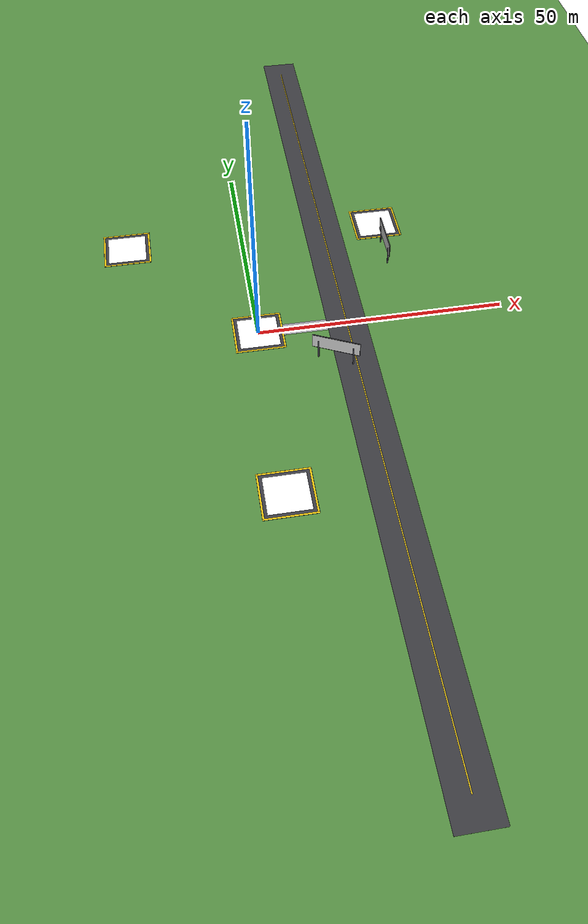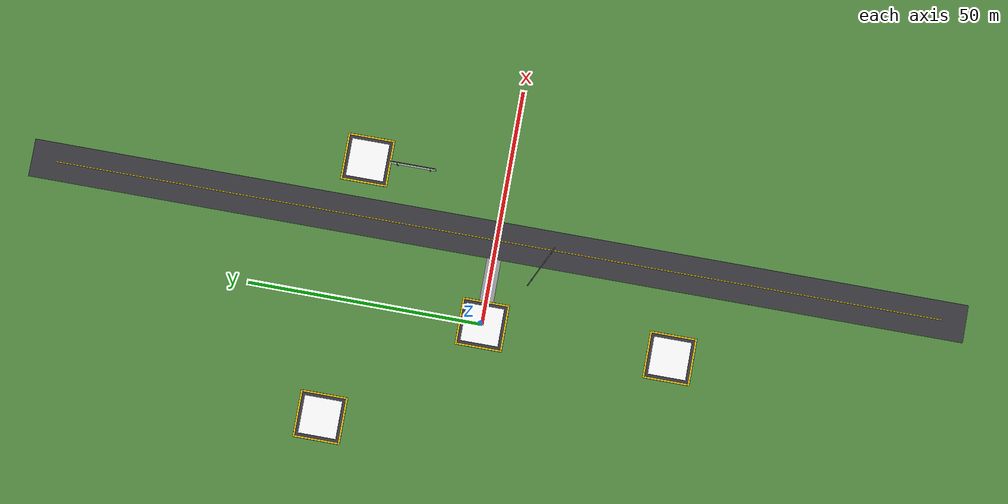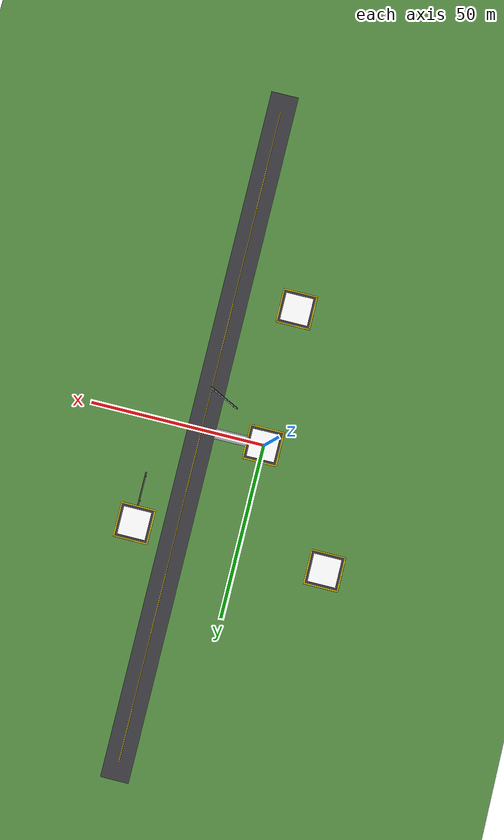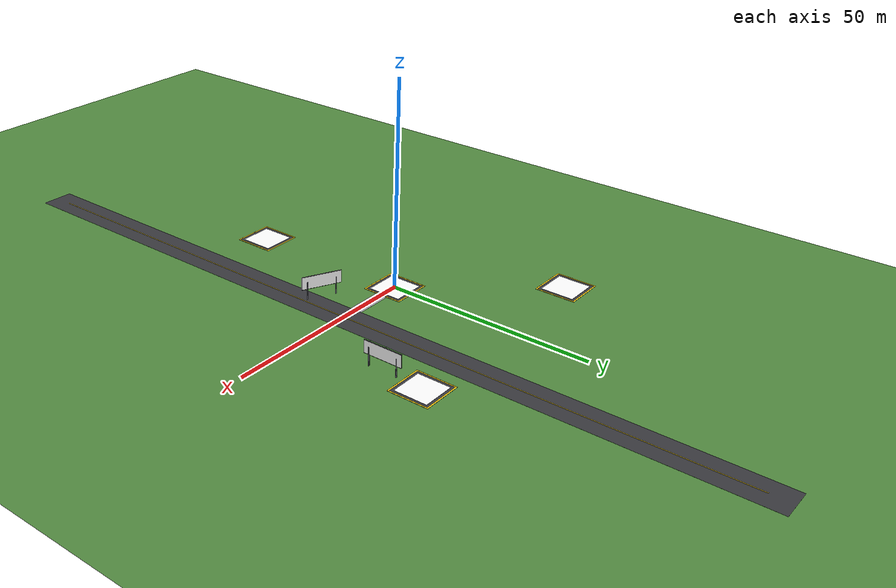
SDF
<sdf version="1.9">
 <world name="default">
  <physics type="ode">
   <max_step_size>0.004</max_step_size>
   <real_time_factor>1.0</real_time_factor>
   <real_time_update_rate>250</real_time_update_rate>
   <ode>
    <solver><type>quick</type><iters>25</iters><sor>1.3</sor></solver>
    <constraints>
     <cfm>0.00001</cfm>
     <erp>0.2</erp>
     <contact_max_correcting_vel>100.0</contact_max_correcting_vel>
     <contact_surface_layer>0.001</contact_surface_layer>
    </constraints>
   </ode>
  </physics>
  <gravity>0 0 -9.8</gravity>
  <magnetic_field>6e-06 2.3e-05 -4.2e-05</magnetic_field>
  <atmosphere type="adiabatic"/>
  <plugin filename="gz-sim-physics-system" name="gz::sim::systems::Physics"/>
  <plugin filename="gz-sim-scene-broadcaster-system" name="gz::sim::systems::SceneBroadcaster"/>
  <plugin filename="gz-sim-user-commands-system" name="gz::sim::systems::UserCommands"/>
  <plugin filename="gz-sim-sensors-system" name="gz::sim::systems::Sensors">
   <render_engine>ogre2</render_engine>
  </plugin>
  <wind><linear_velocity>1.5 0.5 0</linear_velocity></wind>
  <plugin filename="gz-sim-wind-effects-system" name="gz::sim::systems::WindEffects">
   <force_approximation_scaling_factor>0.005</force_approximation_scaling_factor>
   <horizontal>
    <magnitude>
     <time_for_rise>4.0</time_for_rise>
     <sin><amplitude_percent>0.30</amplitude_percent><period>6.0</period></sin>
    </magnitude>
    <direction>
     <time_for_rise>8.0</time_for_rise>
     <sin><amplitude>0.3</amplitude><period>10.0</period></sin>
    </direction>
   </horizontal>
  </plugin>
  <scene>
   <grid>false</grid>
   <ambient>0.58 0.58 0.62 1</ambient>
   <background>0.62 0.78 0.95 1</background>
   <shadows>true</shadows>
  </scene>
  <light name="sunUTC" type="directional">
   <pose>0 0 500 0 -0 0</pose>
   <intensity>1.25</intensity>
   <direction>0.3 0.4 -0.85</direction>
   <diffuse>0.98 0.96 0.90 1</diffuse>
   <specular>0.3 0.3 0.3 1</specular>
   <attenuation><range>2000</range><linear>0</linear><constant>1</constant><quadratic>0</quadratic></attenuation>
  </light>
  <model name="ground_plane">
   <static>true</static>
   <link name="link">
    <collision name="collision">
     <geometry><plane><normal>0 0 1</normal><size>600 600</size></plane></geometry>
    </collision>
    <visual name="visual">
     <geometry><plane><normal>0 0 1</normal><size>600 600</size></plane></geometry>
     <material>
      <ambient>0.28 0.46 0.22 1</ambient>
      <diffuse>0.32 0.54 0.25 1</diffuse>
      <specular>0.04 0.04 0.04 1</specular>
     </material>
    </visual>
   </link>
  </model>
  <model name="asphalt_road">
   <static>true</static>
   <link name="link">
    <visual name="main_road">
     <pose>18.0 0 0.003 0 0 0</pose>
     <geometry><box><size>8.0 200.0 0.005</size></box></geometry>
     <material><ambient>0.18 0.18 0.20 1</ambient><diffuse>0.22 0.22 0.24 1</diffuse></material>
    </visual>
    <visual name="road_stripes">
     <pose>18.0 0 0.006 0 0 0</pose>
     <geometry><box><size>0.2 190.0 0.005</size></box></geometry>
     <material><ambient>0.92 0.78 0.1 1</ambient><diffuse>0.92 0.78 0.1 1</diffuse></material>
    </visual>
    <visual name="driveway_to_helipad">
     <pose>9.0 0 0.003 0 0 0</pose>
     <geometry><box><size>10.0 3.0 0.005</size></box></geometry>
     <material><ambient>0.55 0.55 0.58 1</ambient><diffuse>0.60 0.60 0.63 1</diffuse></material>
    </visual>
   </link>
  </model>
  <include><name>isilab_central_launchpad</name><uri>model://isilab_launchpad</uri></include>
  <include><name>helipad_bravo</name><uri>model://isilab_launchpad</uri><pose>30.0 30.0 0 0 0 0</pose></include>
  <include>
   <name>helipad_charlie</name>
   <uri>model://isilab_launchpad</uri>
   <pose>-25.0 30.0 0 0 0 0</pose>
  </include>
  <include><name>helipad_delta</name><uri>model://isilab_launchpad</uri><pose>0.0 -40.0 0 0 0 0</pose></include>
  <include>
   <name>isilab_main_billboard</name>
   <uri>model://isilab_billboard</uri>
   <pose>14.0 -10.0 0 0 0 -0.45</pose>
  </include>
  <include>
   <name>isilab_flight_center_billboard</name>
   <uri>model://isilab_billboard</uri>
   <pose>30.0 20.0 0 0 0 1.5708</pose>
  </include>
  <spherical_coordinates>
   <surface_model>EARTH_WGS84</surface_model>
   <world_frame_orientation>ENU</world_frame_orientation>
   <latitude_deg>47.397971057728974</latitude_deg>
   <longitude_deg>8.546163739800146</longitude_deg>
   <elevation>0</elevation>
  </spherical_coordinates>
 </world>
</sdf>

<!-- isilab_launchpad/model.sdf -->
<sdf version="1.9">
  <model name="isilab_launchpad">
    <static>true</static>
    <link name="link">
      <!-- Nền bê tông sẫm màu hình vuông 10m x 10m -->
      <collision name="collision">
        <pose>0 0 0.008 0 0 0</pose>
        <geometry>
          <box>
            <size>10.0 10.0 0.016</size>
          </box>
        </geometry>
      </collision>

      <visual name="base_tarmac">
        <pose>0 0 0.008 0 0 0</pose>
        <geometry>
          <box>
            <size>10.0 10.0 0.016</size>
          </box>
        </geometry>
        <material>
          <ambient>0.18 0.18 0.20 1</ambient>
          <diffuse>0.22 0.22 0.25 1</diffuse>
          <specular>0.08 0.08 0.08 1</specular>
        </material>
      </visual>

      <!-- Vạch viền vàng an toàn xung quanh 10m x 10m -->
      <visual name="border_north">
        <pose>0 4.8 0.017 0 0 0</pose>
        <geometry><box><size>10.0 0.35 0.004</size></box></geometry>
        <material><ambient>0.95 0.78 0.05 1</ambient><diffuse>0.95 0.78 0.05 1</diffuse></material>
      </visual>
      <visual name="border_south">
        <pose>0 -4.8 0.017 0 0 0</pose>
        <geometry><box><size>10.0 0.35 0.004</size></box></geometry>
        <material><ambient>0.95 0.78 0.05 1</ambient><diffuse>0.95 0.78 0.05 1</diffuse></material>
      </visual>
      <visual name="border_east">
        <pose>4.8 0 0.017 0 0 0</pose>
        <geometry><box><size>0.35 9.3 0.004</size></box></geometry>
        <material><ambient>0.95 0.78 0.05 1</ambient><diffuse>0.95 0.78 0.05 1</diffuse></material>
      </visual>
      <visual name="border_west">
        <pose>-4.8 0 0.017 0 0 0</pose>
        <geometry><box><size>0.35 9.3 0.004</size></box></geometry>
        <material><ambient>0.95 0.78 0.05 1</ambient><diffuse>0.95 0.78 0.05 1</diffuse></material>
      </visual>

      <!-- Bề mặt sơn Logo ISILAB lớn 8m x 8m bao quanh khu vực xuất phát -->
      <visual name="isilab_painted_logo">
        <pose>0 0 0.020 0 0 0</pose>
        <cast_shadows>false</cast_shadows>
        <geometry>
          <plane>
            <normal>0 0 1</normal>
            <size>8.0 8.0</size>
          </plane>
        </geometry>
        <material>
          <ambient>0.9 0.9 0.9 1</ambient>
          <diffuse>1.0 1.0 1.0 1</diffuse>
          <pbr>
            <metal>
              <albedo_map>model://isilab_launchpad/materials/textures/isilab_square.png</albedo_map>
              <roughness>0.4</roughness>
              <metalness>0.0</metalness>
            </metal>
          </pbr>
        </material>
      </visual>
    </link>
  </model>
</sdf>

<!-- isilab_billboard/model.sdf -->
<sdf version="1.9">
  <model name="isilab_billboard">
    <static>true</static>
    <link name="link">
      <!-- Cột đỡ trụ bên trái (thép xám) -->
      <collision name="pillar_left_col">
        <pose>-3.5 0 2.2 0 0 0</pose>
        <geometry><cylinder><radius>0.15</radius><length>4.4</length></cylinder></geometry>
      </collision>
      <visual name="pillar_left">
        <pose>-3.5 0 2.2 0 0 0</pose>
        <geometry><cylinder><radius>0.15</radius><length>4.4</length></cylinder></geometry>
        <material>
          <ambient>0.3 0.3 0.35 1</ambient>
          <diffuse>0.4 0.4 0.45 1</diffuse>
          <specular>0.5 0.5 0.5 1</specular>
        </material>
      </visual>

      <!-- Cột đỡ trụ bên phải -->
      <collision name="pillar_right_col">
        <pose>3.5 0 2.2 0 0 0</pose>
        <geometry><cylinder><radius>0.15</radius><length>4.4</length></cylinder></geometry>
      </collision>
      <visual name="pillar_right">
        <pose>3.5 0 2.2 0 0 0</pose>
        <geometry><cylinder><radius>0.15</radius><length>4.4</length></cylinder></geometry>
        <material>
          <ambient>0.3 0.3 0.35 1</ambient>
          <diffuse>0.4 0.4 0.45 1</diffuse>
          <specular>0.5 0.5 0.5 1</specular>
        </material>
      </visual>

      <!-- Khung bảng chính (Hộp đỡ phía sau) -->
      <collision name="board_frame_col">
        <pose>0 0 4.2 0 0 0</pose>
        <geometry><box><size>9.6 0.2 3.1</size></box></geometry>
      </collision>
      <visual name="board_frame">
        <pose>0 0 4.2 0 0 0</pose>
        <geometry><box><size>9.6 0.2 3.1</size></box></geometry>
        <material>
          <ambient>0.15 0.15 0.18 1</ambient>
          <diffuse>0.2 0.2 0.22 1</diffuse>
        </material>
      </visual>

      <!-- Mặt trước hiển thị Banner Logo ISILAB (Hướng về -Y) -->
      <visual name="banner_front">
        <pose>0 -0.105 4.2 1.5708 0 0</pose>
        <cast_shadows>false</cast_shadows>
        <geometry>
          <plane>
            <normal>0 0 1</normal>
            <size>9.5 3.0</size>
          </plane>
        </geometry>
        <material>
          <ambient>0.9 0.9 0.9 1</ambient>
          <diffuse>1.0 1.0 1.0 1</diffuse>
          <pbr>
            <metal>
              <albedo_map>model://isilab_billboard/materials/textures/isilab_banner.png</albedo_map>
              <roughness>0.3</roughness>
              <metalness>0.0</metalness>
            </metal>
          </pbr>
        </material>
      </visual>

      <!-- Mặt sau hiển thị Banner Logo ISILAB (Hướng về +Y) -->
      <visual name="banner_back">
        <pose>0 0.105 4.2 -1.5708 0 3.14159</pose>
        <cast_shadows>false</cast_shadows>
        <geometry>
          <plane>
            <normal>0 0 1</normal>
            <size>9.5 3.0</size>
          </plane>
        </geometry>
        <material>
          <ambient>0.9 0.9 0.9 1</ambient>
          <diffuse>1.0 1.0 1.0 1</diffuse>
          <pbr>
            <metal>
              <albedo_map>model://isilab_billboard/materials/textures/isilab_banner.png</albedo_map>
              <roughness>0.3</roughness>
              <metalness>0.0</metalness>
            </metal>
          </pbr>
        </material>
      </visual>
    </link>
  </model>
</sdf>
